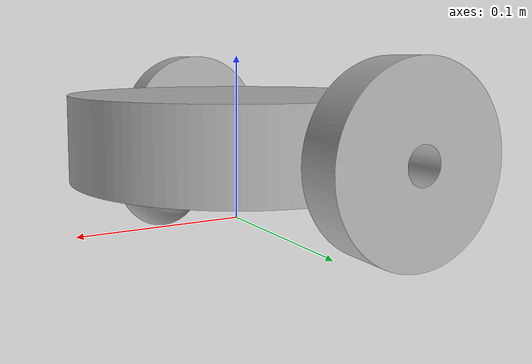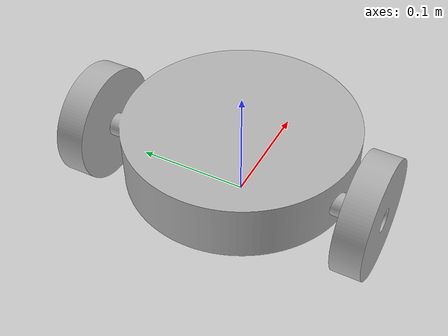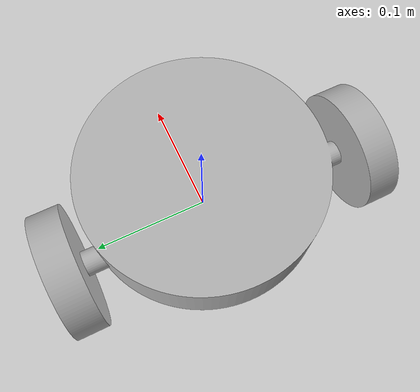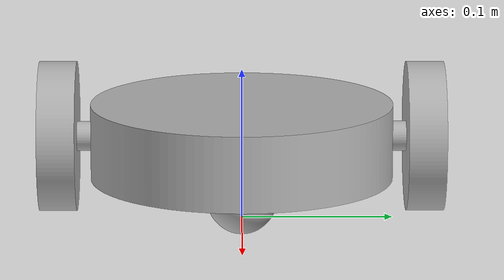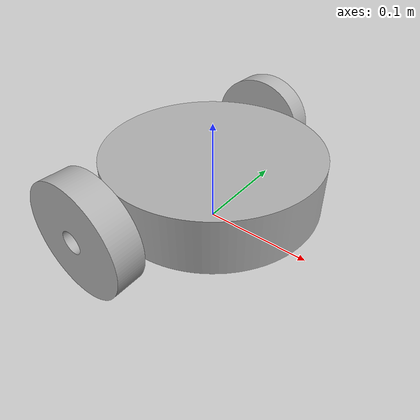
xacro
<?xml version="1.0" ?>
<robot name="differential_drive_robot_version1" xmlns:xacro="http://www.ros.org/wiki/xacro">

<xacro:include filename="$(find robot_description)/urdf/materials.xacro" />
<xacro:include filename="$(find robot_description)/urdf/differential_drive_robot_version1.trans" />
<xacro:include filename="$(find robot_description)/urdf/differential_drive_robot_version1.gazebo" />
<link name="base_link">
  <inertial>
    <origin xyz="9.6361831312612e-05 2.303873814576495e-17 0.05241925929524171" rpy="0 0 0"/>
    <mass value="1.673814560119945"/>
    <inertia ixx="0.004604" iyy="0.004515" izz="0.008425" ixy="0.0" iyz="0.0" ixz="-1e-06"/>
  </inertial>
  <visual>
    <origin xyz="0 0 0" rpy="0 0 0"/>
    <geometry>
      <mesh filename="file://$(find robot_description)/meshes/base_link.stl" scale="0.001 0.001 0.001"/>
    </geometry>
    <material name="silver"/>
  </visual>
  <collision>
    <origin xyz="0 0 0" rpy="0 0 0"/>
    <geometry>
      <mesh filename="file://$(find robot_description)/meshes/base_link.stl" scale="0.001 0.001 0.001"/>
    </geometry>
  </collision>
</link>

<link name="left_wheel_1">
  <inertial>
    <origin xyz="4.557835751282935e-07 -0.012499999999999983 4.708465804748041e-07" rpy="0 0 0"/>
    <mass value="0.17530087007031012"/>
    <inertia ixx="0.000123" iyy="0.000228" izz="0.000123" ixy="-0.0" iyz="0.0" ixz="-0.0"/>
  </inertial>
  <visual>
    <origin xyz="0.024208 0.11 -0.05" rpy="0 0 0"/>
    <geometry>
      <mesh filename="file://$(find robot_description)/meshes/left_wheel_1.stl" scale="0.001 0.001 0.001"/>
    </geometry>
    <material name="silver"/>
  </visual>
  <collision>
    <origin xyz="0.024208 0.11 -0.05" rpy="0 0 0"/>
    <geometry>
      <mesh filename="file://$(find robot_description)/meshes/left_wheel_1.stl" scale="0.001 0.001 0.001"/>
    </geometry>
  </collision>
</link>

<link name="caster_1">
  <inertial>
    <origin xyz="0.049999906857758174 1.472619208837029e-14 -0.009648093222833904" rpy="0 0 0"/>
    <mass value="0.22331961696192731"/>
    <inertia ixx="3.2e-05" iyy="3.2e-05" izz="4.7e-05" ixy="-0.0" iyz="0.0" ixz="-0.0"/>
  </inertial>
  <visual>
    <origin xyz="-0.000227 -0.0 -0.027432" rpy="0 0 0"/>
    <geometry>
      <mesh filename="file://$(find robot_description)/meshes/caster_1.stl" scale="0.001 0.001 0.001"/>
    </geometry>
    <material name="silver"/>
  </visual>
  <collision>
    <origin xyz="-0.000227 -0.0 -0.027432" rpy="0 0 0"/>
    <geometry>
      <mesh filename="file://$(find robot_description)/meshes/caster_1.stl" scale="0.001 0.001 0.001"/>
    </geometry>
  </collision>
</link>

<link name="right_wheel_1">
  <inertial>
    <origin xyz="4.5578366227733147e-07 0.012499999999999983 4.708465804748041e-07" rpy="0 0 0"/>
    <mass value="0.17530087007031012"/>
    <inertia ixx="0.000123" iyy="0.000228" izz="0.000123" ixy="0.0" iyz="-0.0" ixz="-0.0"/>
  </inertial>
  <visual>
    <origin xyz="0.024208 -0.11 -0.05" rpy="0 0 0"/>
    <geometry>
      <mesh filename="file://$(find robot_description)/meshes/right_wheel_1.stl" scale="0.001 0.001 0.001"/>
    </geometry>
    <material name="silver"/>
  </visual>
  <collision>
    <origin xyz="0.024208 -0.11 -0.05" rpy="0 0 0"/>
    <geometry>
      <mesh filename="file://$(find robot_description)/meshes/right_wheel_1.stl" scale="0.001 0.001 0.001"/>
    </geometry>
  </collision>
</link>

<joint name="Revolute 2" type="continuous">
  <origin xyz="-0.024208 -0.11 0.05" rpy="0 0 0"/>
  <parent link="base_link"/>
  <child link="left_wheel_1"/>
  <axis xyz="0.0 -1.0 0.0"/>
</joint>

<joint name="Rigid 3" type="fixed">
  <origin xyz="0.000227 0.0 0.027432" rpy="0 0 0"/>
  <parent link="base_link"/>
  <child link="caster_1"/>
</joint>

<joint name="Revolute 4" type="continuous">
  <origin xyz="-0.024208 0.11 0.05" rpy="0 0 0"/>
  <parent link="base_link"/>
  <child link="right_wheel_1"/>
  <axis xyz="0.0 1.0 0.0"/>
</joint>

</robot>

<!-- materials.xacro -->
<robot name="differential_drive_robot_version1" xmlns:xacro="http://www.ros.org/wiki/xacro" >

<material name="silver">
  <color rgba="0.700 0.700 0.700 1.000"/>
</material>

</robot>

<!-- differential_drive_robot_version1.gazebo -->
<robot name="differential_drive_robot_version1" xmlns:xacro="http://www.ros.org/wiki/xacro" >

<xacro:property name="body_color" value="Gazebo/Silver" />

<gazebo>
  <plugin name="control" filename="libgazebo_ros_control.so"/>
</gazebo>
<gazebo reference="base_link">
  <material>${body_color}</material>
  <mu1>0.2</mu1>
  <mu2>0.2</mu2>
  <self_collide>true</self_collide>
  <gravity>true</gravity>
</gazebo>

<gazebo reference="left_wheel_1">
  <material>${body_color}</material>
  <mu1>0.2</mu1>
  <mu2>0.2</mu2>
  <self_collide>true</self_collide>
</gazebo>

<gazebo reference="caster_1">
  <material>${body_color}</material>
  <mu1>0.2</mu1>
  <mu2>0.2</mu2>
  <self_collide>true</self_collide>
</gazebo>

<gazebo reference="right_wheel_1">
  <material>${body_color}</material>
  <mu1>0.2</mu1>
  <mu2>0.2</mu2>
  <self_collide>true</self_collide>
</gazebo>
<gazebo>
  <plugin name="differential_drive_controller" filename="libgazebo_ros_diff_drive.so">

    <!-- Plugin update rate in Hz -->
    <updateRate>100</updateRate>

    <!-- Name of left joint, defaults to `left_joint` -->
    <leftJoint>Revolute 2</leftJoint>

    <!-- Name of right joint, defaults to `right_joint` -->
    <rightJoint>Revolute 4</rightJoint>

    <!-- The distance from the center of one wheel to the other, in meters, defaults to 0.34 m -->
    <wheelSeparation>0.5380</wheelSeparation>

    <!-- Diameter of the wheels, in meters, defaults to 0.15 m -->
    <wheelDiameter>0.1</wheelDiameter>

    <!-- Wheel acceleration, in rad/s^2, defaults to 0.0 rad/s^2 -->
    <wheelAcceleration>1.0</wheelAcceleration>

    <!-- Maximum torque which the wheels can produce, in Nm, defaults to 5 Nm -->
    <wheelTorque>50</wheelTorque>

    <!-- Topic to receive geometry_msgs/Twist message commands, defaults to `cmd_vel` -->
    <commandTopic>cmd_vel</commandTopic>

    <!-- Topic to publish nav_msgs/Odometry messages, defaults to `odom` -->
    <odometryTopic>odom</odometryTopic>

    <!-- Odometry frame, defaults to `odom` -->
    <odometryFrame>odom</odometryFrame>

    <!-- Robot frame to calculate odometry from, defaults to `base_footprint` -->
    <robotBaseFrame>base_link</robotBaseFrame>

    <!-- Odometry source, 0 for ENCODER, 1 for WORLD, defaults to WORLD -->
    <odometrySource>1</odometrySource>

    <!-- Set to true to publish transforms for the wheel links, defaults to false -->
    <publishWheelTF>true</publishWheelTF>

    <!-- Set to true to publish transforms for the odometry, defaults to true -->
    <publishOdom>true</publishOdom>

    <!-- Set to true to publish sensor_msgs/JointState on /joint_states for the wheel joints, defaults to false -->
    <publishWheelJointState>true</publishWheelJointState>

    <!-- Set to true to swap right and left wheels, defaults to true -->
    <legacyMode>false</legacyMode>
  </plugin>
</gazebo>
</robot>
